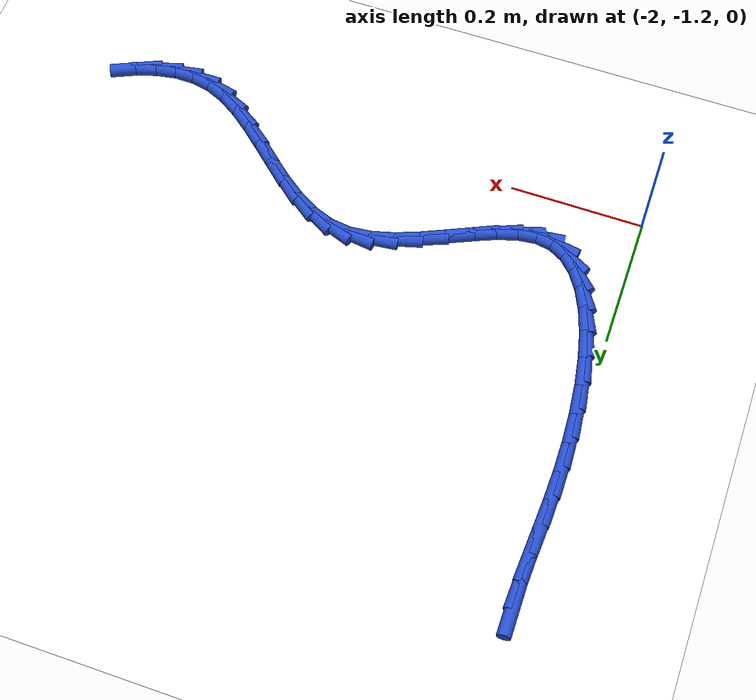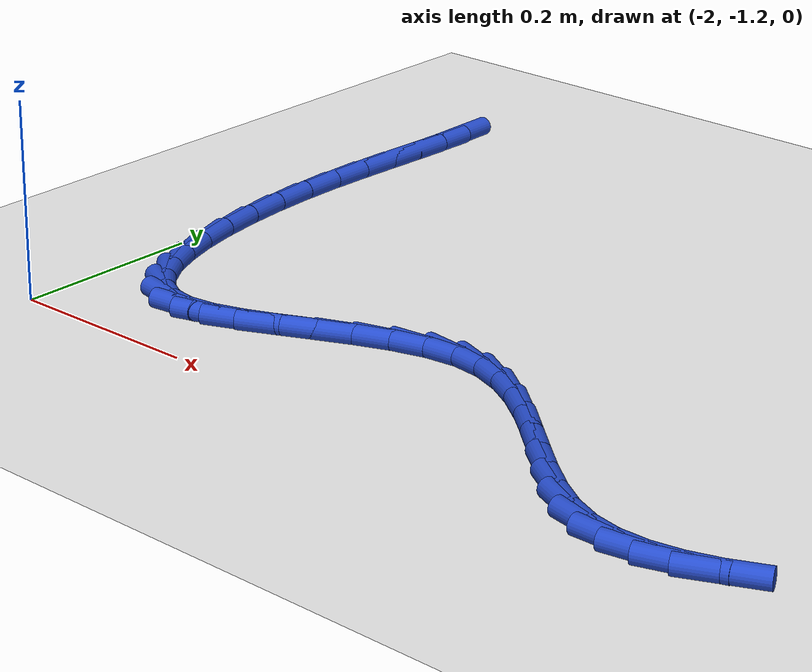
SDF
<sdf version="1.6">
 <world name="default">
  <model name="ground_plane">
   <static>1</static>
   <link name="link">
    <collision name="collision">
     <geometry><plane><normal>0 0 1</normal><size>100 100</size></plane></geometry>
     <surface><friction><ode><mu>100</mu><mu2>50</mu2></ode></friction></surface>
    </collision>
    <visual name="visual">
     <cast_shadows>0</cast_shadows>
     <geometry><plane><normal>0 0 1</normal><size>100 100</size></plane></geometry>
     <material>
      <script><uri>file://media/materials/scripts/gazebo.material</uri><name>Gazebo/WhiteGlow</name></script>
     </material>
    </visual>
   </link>
  </model>
  <model name="line">
   <link name="link_136">
    <pose>-1.9880591525363398 -0.5799210257185548 0.01 0 1.57 -1.559628074408684</pose>
    <collision name="collision">
     <geometry><cylinder><radius>0.01</radius><length>0.08</length></cylinder></geometry>
    </collision>
    <visual name="visual">
     <material>
      <script><name>Gazebo/Blue</name><uri>file://media/materials/scripts/gazebo.material</uri></script>
     </material>
     <geometry><cylinder><radius>0.01</radius><length>0.08</length></cylinder></geometry>
    </visual>
   </link>
   <link name="link_137">
    <pose>-1.9876474279952283 -0.6167851122933192 0.01 0 1.57 1.5366922981270676</pose>
    <collision name="collision">
     <geometry><cylinder><radius>0.01</radius><length>0.08</length></cylinder></geometry>
    </collision>
    <visual name="visual">
     <material>
      <script><name>Gazebo/Blue</name><uri>file://media/materials/scripts/gazebo.material</uri></script>
     </material>
     <geometry><cylinder><radius>0.01</radius><length>0.08</length></cylinder></geometry>
    </visual>
   </link>
   <link name="link_138">
    <pose>-1.9889921827430705 -0.6562007885442311 0.01 0 1.57 1.518419580734447</pose>
    <collision name="collision">
     <geometry><cylinder><radius>0.01</radius><length>0.08</length></cylinder></geometry>
    </collision>
    <visual name="visual">
     <material>
      <script><name>Gazebo/Blue</name><uri>file://media/materials/scripts/gazebo.material</uri></script>
     </material>
     <geometry><cylinder><radius>0.01</radius><length>0.08</length></cylinder></geometry>
    </visual>
   </link>
   <link name="link_139">
    <pose>-1.9911681413074154 -0.6977071549711142 0.01 0 1.57 1.5225705961073734</pose>
    <collision name="collision">
     <geometry><cylinder><radius>0.01</radius><length>0.08</length></cylinder></geometry>
    </collision>
    <visual name="visual">
     <material>
      <script><name>Gazebo/Blue</name><uri>file://media/materials/scripts/gazebo.material</uri></script>
     </material>
     <geometry><cylinder><radius>0.01</radius><length>0.08</length></cylinder></geometry>
    </visual>
   </link>
   <link name="link_140">
    <pose>-1.9932500282158117 -0.7408433120737946 0.01 0 1.57 1.5468147124060287</pose>
    <collision name="collision">
     <geometry><cylinder><radius>0.01</radius><length>0.08</length></cylinder></geometry>
    </collision>
    <visual name="visual">
     <material>
      <script><name>Gazebo/Blue</name><uri>file://media/materials/scripts/gazebo.material</uri></script>
     </material>
     <geometry><cylinder><radius>0.01</radius><length>0.08</length></cylinder></geometry>
    </visual>
   </link>
   <link name="link_141">
    <pose>-1.9943127365544424 -0.7851482777898768 0.01 0 1.57 -1.555262791753703</pose>
    <collision name="collision">
     <geometry><cylinder><radius>0.01</radius><length>0.08</length></cylinder></geometry>
    </collision>
    <visual name="visual">
     <material>
      <script><name>Gazebo/Blue</name><uri>file://media/materials/scripts/gazebo.material</uri></script>
     </material>
     <geometry><cylinder><radius>0.01</radius><length>0.08</length></cylinder></geometry>
    </visual>
   </link>
   <link name="link_142">
    <pose>-1.993614870408307 -0.8300710860136633 0.01 0 1.57 -1.511267210678656</pose>
    <collision name="collision">
     <geometry><cylinder><radius>0.01</radius><length>0.08</length></cylinder></geometry>
    </collision>
    <visual name="visual">
     <material>
      <script><name>Gazebo/Blue</name><uri>file://media/materials/scripts/gazebo.material</uri></script>
     </material>
     <geometry><cylinder><radius>0.01</radius><length>0.08</length></cylinder></geometry>
    </visual>
   </link>
   <link name="link_143">
    <pose>-1.9909490968722 -0.8747991796116364 0.01 0 1.57 -1.4625849959987722</pose>
    <collision name="collision">
     <geometry><cylinder><radius>0.01</radius><length>0.08</length></cylinder></geometry>
    </collision>
    <visual name="visual">
     <material>
      <script><name>Gazebo/Blue</name><uri>file://media/materials/scripts/gazebo.material</uri></script>
     </material>
     <geometry><cylinder><radius>0.01</radius><length>0.08</length></cylinder></geometry>
    </visual>
   </link>
   <link name="link_144">
    <pose>-1.9862045903914118 -0.9184727308912916 0.01 0 1.57 -1.406248806235046</pose>
    <collision name="collision">
     <geometry><cylinder><radius>0.01</radius><length>0.08</length></cylinder></geometry>
    </collision>
    <visual name="visual">
     <material>
      <script><name>Gazebo/Blue</name><uri>file://media/materials/scripts/gazebo.material</uri></script>
     </material>
     <geometry><cylinder><radius>0.01</radius><length>0.08</length></cylinder></geometry>
    </visual>
   </link>
   <link name="link_145">
    <pose>-1.9792705254112335 -0.9602319121601202 0.01 0 1.57 -1.3382111266970822</pose>
    <collision name="collision">
     <geometry><cylinder><radius>0.01</radius><length>0.08</length></cylinder></geometry>
    </collision>
    <visual name="visual">
     <material>
      <script><name>Gazebo/Blue</name><uri>file://media/materials/scripts/gazebo.material</uri></script>
     </material>
     <geometry><cylinder><radius>0.01</radius><length>0.08</length></cylinder></geometry>
    </visual>
   </link>
   <link name="link_146">
    <pose>-1.9700360763769549 -0.9992168957256172 0.01 0 1.57 -1.2525630680020052</pose>
    <collision name="collision">
     <geometry><cylinder><radius>0.01</radius><length>0.08</length></cylinder></geometry>
    </collision>
    <visual name="visual">
     <material>
      <script><name>Gazebo/Blue</name><uri>file://media/materials/scripts/gazebo.material</uri></script>
     </material>
     <geometry><cylinder><radius>0.01</radius><length>0.08</length></cylinder></geometry>
    </visual>
   </link>
   <link name="link_147">
    <pose>-1.9583904177338685 -1.0345678538952772 0.01 0 1.57 -1.1403686245698184</pose>
    <collision name="collision">
     <geometry><cylinder><radius>0.01</radius><length>0.08</length></cylinder></geometry>
    </collision>
    <visual name="visual">
     <material>
      <script><name>Gazebo/Blue</name><uri>file://media/materials/scripts/gazebo.material</uri></script>
     </material>
     <geometry><cylinder><radius>0.01</radius><length>0.08</length></cylinder></geometry>
    </visual>
   </link>
   <link name="link_148">
    <pose>-1.9442227239272634 -1.0654249589765943 0.01 0 1.57 -0.9882897848002505</pose>
    <collision name="collision">
     <geometry><cylinder><radius>0.01</radius><length>0.08</length></cylinder></geometry>
    </collision>
    <visual name="visual">
     <material>
      <script><name>Gazebo/Blue</name><uri>file://media/materials/scripts/gazebo.material</uri></script>
     </material>
     <geometry><cylinder><radius>0.01</radius><length>0.08</length></cylinder></geometry>
    </visual>
   </link>
   <link name="link_149">
    <pose>-1.9274221694024318 -1.0909283832770609 0.01 0 1.57 -0.7788492549904162</pose>
    <collision name="collision">
     <geometry><cylinder><radius>0.01</radius><length>0.08</length></cylinder></geometry>
    </collision>
    <visual name="visual">
     <material>
      <script><name>Gazebo/Blue</name><uri>file://media/materials/scripts/gazebo.material</uri></script>
     </material>
     <geometry><cylinder><radius>0.01</radius><length>0.08</length></cylinder></geometry>
    </visual>
   </link>
   <link name="link_150">
    <pose>-1.9078779286046632 -1.1102182991041716 0.01 0 1.57 -0.4993150046626442</pose>
    <collision name="collision">
     <geometry><cylinder><radius>0.01</radius><length>0.08</length></cylinder></geometry>
    </collision>
    <visual name="visual">
     <material>
      <script><name>Gazebo/Blue</name><uri>file://media/materials/scripts/gazebo.material</uri></script>
     </material>
     <geometry><cylinder><radius>0.01</radius><length>0.08</length></cylinder></geometry>
    </visual>
   </link>
   <link name="link_151">
    <pose>-1.885479175979249 -1.1224348787654208 0.01 0 1.57 -0.16762089915932724</pose>
    <collision name="collision">
     <geometry><cylinder><radius>0.01</radius><length>0.08</length></cylinder></geometry>
    </collision>
    <visual name="visual">
     <material>
      <script><name>Gazebo/Blue</name><uri>file://media/materials/scripts/gazebo.material</uri></script>
     </material>
     <geometry><cylinder><radius>0.01</radius><length>0.08</length></cylinder></geometry>
    </visual>
   </link>
   <link name="link_152">
    <pose>-1.8601169337466044 -1.1267263886162753 0.01 0 1.57 0.1257279505113028</pose>
    <collision name="collision">
     <geometry><cylinder><radius>0.01</radius><length>0.08</length></cylinder></geometry>
    </collision>
    <visual name="visual">
     <material>
      <script><name>Gazebo/Blue</name><uri>file://media/materials/scripts/gazebo.material</uri></script>
     </material>
     <geometry><cylinder><radius>0.01</radius><length>0.08</length></cylinder></geometry>
    </visual>
   </link>
   <link name="link_153">
    <pose>-1.83189174252142 -1.123158875488947 0.01 0 1.57 0.3044170651398952</pose>
    <collision name="collision">
     <geometry><cylinder><radius>0.01</radius><length>0.08</length></cylinder></geometry>
    </collision>
    <visual name="visual">
     <material>
      <script><name>Gazebo/Blue</name><uri>file://media/materials/scripts/gazebo.material</uri></script>
     </material>
     <geometry><cylinder><radius>0.01</radius><length>0.08</length></cylinder></geometry>
    </visual>
   </link>
   <link name="link_154">
    <pose>-1.8013037064133104 -1.1135486457865225 0.01 0 1.57 0.3984015659615556</pose>
    <collision name="collision">
     <geometry><cylinder><radius>0.01</radius><length>0.08</length></cylinder></geometry>
    </collision>
    <visual name="visual">
     <material>
      <script><name>Gazebo/Blue</name><uri>file://media/materials/scripts/gazebo.material</uri></script>
     </material>
     <geometry><cylinder><radius>0.01</radius><length>0.08</length></cylinder></geometry>
    </visual>
   </link>
   <link name="link_155">
    <pose>-1.7688978270845181 -1.0999086764593264 0.01 0 1.57 0.43516310997009433</pose>
    <collision name="collision">
     <geometry><cylinder><radius>0.01</radius><length>0.08</length></cylinder></geometry>
    </collision>
    <visual name="visual">
     <material>
      <script><name>Gazebo/Blue</name><uri>file://media/materials/scripts/gazebo.material</uri></script>
     </material>
     <geometry><cylinder><radius>0.01</radius><length>0.08</length></cylinder></geometry>
    </visual>
   </link>
   <link name="link_156">
    <pose>-1.7352191061972864 -1.0842519444576828 0.01 0 1.57 0.4271373528387235</pose>
    <collision name="collision">
     <geometry><cylinder><radius>0.01</radius><length>0.08</length></cylinder></geometry>
    </collision>
    <visual name="visual">
     <material>
      <script><name>Gazebo/Blue</name><uri>file://media/materials/scripts/gazebo.material</uri></script>
     </material>
     <geometry><cylinder><radius>0.01</radius><length>0.08</length></cylinder></geometry>
    </visual>
   </link>
   <link name="link_157">
    <pose>-1.700812545413859 -1.0685914267319168 0.01 0 1.57 0.3759013302265444</pose>
    <collision name="collision">
     <geometry><cylinder><radius>0.01</radius><length>0.08</length></cylinder></geometry>
    </collision>
    <visual name="visual">
     <material>
      <script><name>Gazebo/Blue</name><uri>file://media/materials/scripts/gazebo.material</uri></script>
     </material>
     <geometry><cylinder><radius>0.01</radius><length>0.08</length></cylinder></geometry>
    </visual>
   </link>
   <link name="link_158">
    <pose>-1.6662231463964814 -1.0549401002323529 0.01 0 1.57 0.2742418597058962</pose>
    <collision name="collision">
     <geometry><cylinder><radius>0.01</radius><length>0.08</length></cylinder></geometry>
    </collision>
    <visual name="visual">
     <material>
      <script><name>Gazebo/Blue</name><uri>file://media/materials/scripts/gazebo.material</uri></script>
     </material>
     <geometry><cylinder><radius>0.01</radius><length>0.08</length></cylinder></geometry>
    </visual>
   </link>
   <link name="link_159">
    <pose>-1.6319959108073954 -1.0453109419093152 0.01 0 1.57 0.10744789744130148</pose>
    <collision name="collision">
     <geometry><cylinder><radius>0.01</radius><length>0.08</length></cylinder></geometry>
    </collision>
    <visual name="visual">
     <material>
      <script><name>Gazebo/Blue</name><uri>file://media/materials/scripts/gazebo.material</uri></script>
     </material>
     <geometry><cylinder><radius>0.01</radius><length>0.08</length></cylinder></geometry>
    </visual>
   </link>
   <link name="link_160">
    <pose>-1.5986758403088461 -1.0417169287131292 0.01 0 1.57 -0.12964927889535843</pose>
    <collision name="collision">
     <geometry><cylinder><radius>0.01</radius><length>0.08</length></cylinder></geometry>
    </collision>
    <visual name="visual">
     <material>
      <script><name>Gazebo/Blue</name><uri>file://media/materials/scripts/gazebo.material</uri></script>
     </material>
     <geometry><cylinder><radius>0.01</radius><length>0.08</length></cylinder></geometry>
    </visual>
   </link>
   <link name="link_161">
    <pose>-1.5667437938859803 -1.0458802486798382 0.01 0 1.57 -0.3569085347000183</pose>
    <collision name="collision">
     <geometry><cylinder><radius>0.01</radius><length>0.08</length></cylinder></geometry>
    </collision>
    <visual name="visual">
     <material>
      <script><name>Gazebo/Blue</name><uri>file://media/materials/scripts/gazebo.material</uri></script>
     </material>
     <geometry><cylinder><radius>0.01</radius><length>0.08</length></cylinder></geometry>
    </visual>
   </link>
   <link name="link_162">
    <pose>-1.5361847495355652 -1.057275028168709 0.01 0 1.57 -0.5251275928909287</pose>
    <collision name="collision">
     <geometry><cylinder><radius>0.01</radius><length>0.08</length></cylinder></geometry>
    </collision>
    <visual name="visual">
     <material>
      <script><name>Gazebo/Blue</name><uri>file://media/materials/scripts/gazebo.material</uri></script>
     </material>
     <geometry><cylinder><radius>0.01</radius><length>0.08</length></cylinder></geometry>
    </visual>
   </link>
   <link name="link_163">
    <pose>-1.5067525922586205 -1.0743277403325353 0.01 0 1.57 -0.6371217453428194</pose>
    <collision name="collision">
     <geometry><cylinder><radius>0.01</radius><length>0.08</length></cylinder></geometry>
    </collision>
    <visual name="visual">
     <material>
      <script><name>Gazebo/Blue</name><uri>file://media/materials/scripts/gazebo.material</uri></script>
     </material>
     <geometry><cylinder><radius>0.01</radius><length>0.08</length></cylinder></geometry>
    </visual>
   </link>
   <link name="link_164">
    <pose>-1.4781999136240538 -1.095458994588189 0.01 0 1.57 -0.7023670326792727</pose>
    <collision name="collision">
     <geometry><cylinder><radius>0.01</radius><length>0.08</length></cylinder></geometry>
    </collision>
    <visual name="visual">
     <material>
      <script><name>Gazebo/Blue</name><uri>file://media/materials/scripts/gazebo.material</uri></script>
     </material>
     <geometry><cylinder><radius>0.01</radius><length>0.08</length></cylinder></geometry>
    </visual>
   </link>
   <link name="link_165">
    <pose>-1.4502793052007725 -1.119089400352542 0.01 0 1.57 -0.7281369139036016</pose>
    <collision name="collision">
     <geometry><cylinder><radius>0.01</radius><length>0.08</length></cylinder></geometry>
    </collision>
    <visual name="visual">
     <material>
      <script><name>Gazebo/Blue</name><uri>file://media/materials/scripts/gazebo.material</uri></script>
     </material>
     <geometry><cylinder><radius>0.01</radius><length>0.08</length></cylinder></geometry>
    </visual>
   </link>
   <link name="link_166">
    <pose>-1.4227433585576823 -1.143639567042466 0.01 0 1.57 -0.7171050618958343</pose>
    <collision name="collision">
     <geometry><cylinder><radius>0.01</radius><length>0.08</length></cylinder></geometry>
    </collision>
    <visual name="visual">
     <material>
      <script><name>Gazebo/Blue</name><uri>file://media/materials/scripts/gazebo.material</uri></script>
     </material>
     <geometry><cylinder><radius>0.01</radius><length>0.08</length></cylinder></geometry>
    </visual>
   </link>
   <link name="link_167">
    <pose>-1.3953446652636923 -1.167530104074831 0.01 0 1.57 -0.6668097808692219</pose>
    <collision name="collision">
     <geometry><cylinder><radius>0.01</radius><length>0.08</length></cylinder></geometry>
    </collision>
    <visual name="visual">
     <material>
      <script><name>Gazebo/Blue</name><uri>file://media/materials/scripts/gazebo.material</uri></script>
     </material>
     <geometry><cylinder><radius>0.01</radius><length>0.08</length></cylinder></geometry>
    </visual>
   </link>
   <link name="link_168">
    <pose>-1.3678358168877094 -1.18918162086651 0.01 0 1.57 -0.5692776092426267</pose>
    <collision name="collision">
     <geometry><cylinder><radius>0.01</radius><length>0.08</length></cylinder></geometry>
    </collision>
    <visual name="visual">
     <material>
      <script><name>Gazebo/Blue</name><uri>file://media/materials/scripts/gazebo.material</uri></script>
     </material>
     <geometry><cylinder><radius>0.01</radius><length>0.08</length></cylinder></geometry>
    </visual>
   </link>
   <link name="link_169">
    <pose>-1.33996940499864 -1.2070147268343734 0.01 0 1.57 -0.41188054973619725</pose>
    <collision name="collision">
     <geometry><cylinder><radius>0.01</radius><length>0.08</length></cylinder></geometry>
    </collision>
    <visual name="visual">
     <material>
      <script><name>Gazebo/Blue</name><uri>file://media/materials/scripts/gazebo.material</uri></script>
     </material>
     <geometry><cylinder><radius>0.01</radius><length>0.08</length></cylinder></geometry>
    </visual>
   </link>
   <link name="link_170">
    <pose>-1.3114984992811576 -1.219452778098186 0.01 0 1.57 -0.20512895548693683</pose>
    <collision name="collision">
     <geometry><cylinder><radius>0.01</radius><length>0.08</length></cylinder></geometry>
    </collision>
    <visual name="visual">
     <material>
      <script><name>Gazebo/Blue</name><uri>file://media/materials/scripts/gazebo.material</uri></script>
     </material>
     <geometry><cylinder><radius>0.01</radius><length>0.08</length></cylinder></geometry>
    </visual>
   </link>
   <link name="link_171">
    <pose>-1.2822827249625461 -1.225531276281443 0.01 0 1.57 -0.004526988379819519</pose>
    <collision name="collision">
     <geometry><cylinder><radius>0.01</radius><length>0.08</length></cylinder></geometry>
    </collision>
    <visual name="visual">
     <material>
      <script><name>Gazebo/Blue</name><uri>file://media/materials/scripts/gazebo.material</uri></script>
     </material>
     <geometry><cylinder><radius>0.01</radius><length>0.08</length></cylinder></geometry>
    </visual>
   </link>
   <link name="link_172">
    <pose>-1.252422050074997 -1.2256664561331154 0.01 0 1.57 0.16965021450900658</pose>
    <collision name="collision">
     <geometry><cylinder><radius>0.01</radius><length>0.08</length></cylinder></geometry>
    </collision>
    <visual name="visual">
     <material>
      <script><name>Gazebo/Blue</name><uri>file://media/materials/scripts/gazebo.material</uri></script>
     </material>
     <geometry><cylinder><radius>0.01</radius><length>0.08</length></cylinder></geometry>
    </visual>
   </link>
   <link name="link_173">
    <pose>-1.2220493699372372 -1.220463714691705 0.01 0 1.57 0.31249367922292354</pose>
    <collision name="collision">
     <geometry><cylinder><radius>0.01</radius><length>0.08</length></cylinder></geometry>
    </collision>
    <visual name="visual">
     <material>
      <script><name>Gazebo/Blue</name><uri>file://media/materials/scripts/gazebo.material</uri></script>
     </material>
     <geometry><cylinder><radius>0.01</radius><length>0.08</length></cylinder></geometry>
    </visual>
   </link>
   <link name="link_174">
    <pose>-1.1912975798679932 -1.210528448995713 0.01 0 1.57 0.4258890815191316</pose>
    <collision name="collision">
     <geometry><cylinder><radius>0.01</radius><length>0.08</length></cylinder></geometry>
    </collision>
    <visual name="visual">
     <material>
      <script><name>Gazebo/Blue</name><uri>file://media/materials/scripts/gazebo.material</uri></script>
     </material>
     <geometry><cylinder><radius>0.01</radius><length>0.08</length></cylinder></geometry>
    </visual>
   </link>
  </model>
 </world>
</sdf>
